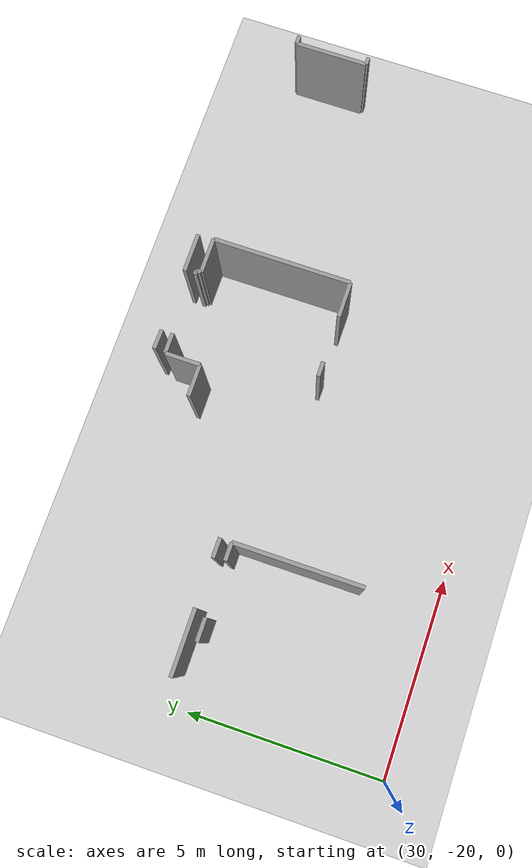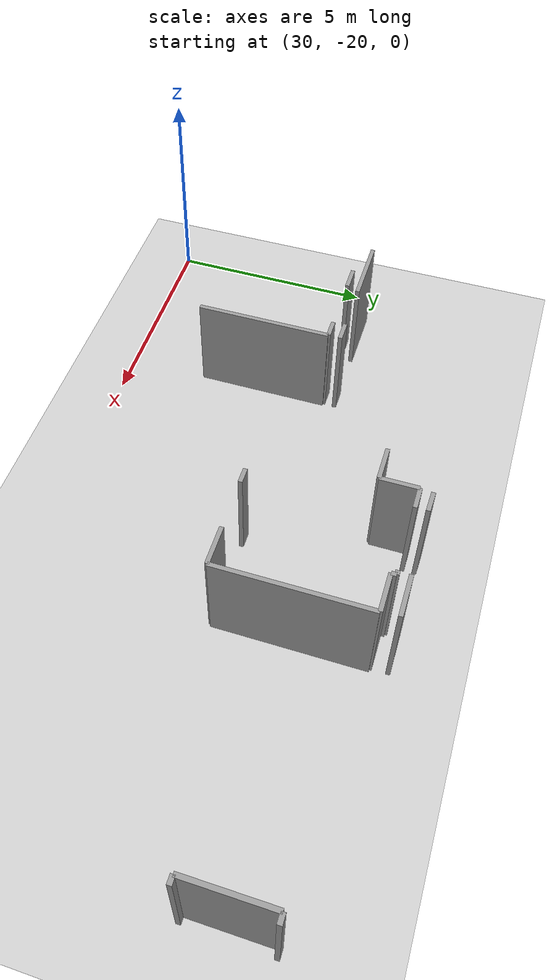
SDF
<sdf version="1.6">
 <world name="default">
  <model name="ground_plane">
   <static>1</static>
   <link name="link">
    <collision name="collision">
     <geometry><plane><normal>0 0 1</normal><size>100 100</size></plane></geometry>
     <surface><friction><ode><mu>100</mu><mu2>50</mu2></ode></friction></surface>
    </collision>
    <visual name="visual">
     <cast_shadows>0</cast_shadows>
     <geometry><plane><normal>0 0 1</normal><size>100 100</size></plane></geometry>
     <material>
      <script><uri>file://media/materials/scripts/gazebo.material</uri><name>Gazebo/Grey</name></script>
     </material>
    </visual>
   </link>
  </model>
  <model name="50045228">
   <static>1</static>
   <link name="Wall_214">
    <collision name="Wall_214_Collision">
     <geometry><box><size>0.978719355555 0.1 2.5</size></box></geometry>
     <pose>0.489359677777 0 1.25 0 0 0</pose>
    </collision>
    <visual name="Wall_214_Visual">
     <pose>0.489359677777 0 1.25 0 0 0</pose>
     <geometry><box><size>0.978719355555 0.1 2.5</size></box></geometry>
     <material>
      <script><uri>file://media/materials/scripts/gazebo.material</uri><name>Gazebo/Grey</name></script>
      <ambient>1 1 1 1</ambient>
     </material>
    </visual>
    <pose>87.7485649044 -40.1878785957 0 0 0 3.14159265359</pose>
   </link>
   <link name="Wall_215">
    <collision name="Wall_215_Collision">
     <geometry><box><size>0.491246084842 0.1 2.5</size></box></geometry>
     <pose>0.245623042421 0 1.25 0 0 0</pose>
    </collision>
    <visual name="Wall_215_Visual">
     <pose>0.245623042421 0 1.25 0 0 0</pose>
     <geometry><box><size>0.491246084842 0.1 2.5</size></box></geometry>
     <material>
      <script><uri>file://media/materials/scripts/gazebo.material</uri><name>Gazebo/Grey</name></script>
      <ambient>1 1 1 1</ambient>
     </material>
    </visual>
    <pose>85.1851194063 -40.1878785957 0 0 0 3.11499081876</pose>
   </link>
   <link name="Wall_226">
    <collision name="Wall_226_Collision">
     <geometry><box><size>0.216802511814 0.1 2.5</size></box></geometry>
     <pose>0.108401255907 0 1.25 0 0 0</pose>
    </collision>
    <visual name="Wall_226_Visual">
     <pose>0.108401255907 0 1.25 0 0 0</pose>
     <geometry><box><size>0.216802511814 0.1 2.5</size></box></geometry>
     <material>
      <script><uri>file://media/materials/scripts/gazebo.material</uri><name>Gazebo/Grey</name></script>
      <ambient>1 1 1 1</ambient>
     </material>
    </visual>
    <pose>93.6734007802 -40.7979448796 0 0 0 3.14159265359</pose>
   </link>
   <link name="Wall_227">
    <collision name="Wall_227_Collision">
     <geometry><box><size>1.86736862136 0.1 2.5</size></box></geometry>
     <pose>0.933684310678 0 1.25 0 0 0</pose>
    </collision>
    <visual name="Wall_227_Visual">
     <pose>0.933684310678 0 1.25 0 0 0</pose>
     <geometry><box><size>1.86736862136 0.1 2.5</size></box></geometry>
     <material>
      <script><uri>file://media/materials/scripts/gazebo.material</uri><name>Gazebo/Grey</name></script>
      <ambient>1 1 1 1</ambient>
     </material>
    </visual>
    <pose>93.4565982684 -40.7979448796 0 0 0 -1.57079632679</pose>
   </link>
   <link name="Wall_228">
    <collision name="Wall_228_Collision">
     <geometry><box><size>0.189654625607 0.1 2.5</size></box></geometry>
     <pose>0.0948273128033 0 1.25 0 0 0</pose>
    </collision>
    <visual name="Wall_228_Visual">
     <pose>0.0948273128033 0 1.25 0 0 0</pose>
     <geometry><box><size>0.189654625607 0.1 2.5</size></box></geometry>
     <material>
      <script><uri>file://media/materials/scripts/gazebo.material</uri><name>Gazebo/Grey</name></script>
      <ambient>1 1 1 1</ambient>
     </material>
    </visual>
    <pose>93.4565982684 -42.665313501 0 0 0 0.0</pose>
   </link>
   <link name="Wall_233">
    <collision name="Wall_233_Collision">
     <geometry><box><size>0.810757667058 0.1 2.5</size></box></geometry>
     <pose>0.405378833529 0 1.25 0 0 0</pose>
    </collision>
    <visual name="Wall_233_Visual">
     <pose>0.405378833529 0 1.25 0 0 0</pose>
     <geometry><box><size>0.810757667058 0.1 2.5</size></box></geometry>
     <material>
      <script><uri>file://media/materials/scripts/gazebo.material</uri><name>Gazebo/Grey</name></script>
      <ambient>1 1 1 1</ambient>
     </material>
    </visual>
    <pose>83.8571564492 -41.3472455679 0 0 0 0.0</pose>
   </link>
   <link name="Wall_234">
    <collision name="Wall_234_Collision">
     <geometry><box><size>0.884082331674 0.1 2.5</size></box></geometry>
     <pose>0.442041165837 0 1.25 0 0 0</pose>
    </collision>
    <visual name="Wall_234_Visual">
     <pose>0.442041165837 0 1.25 0 0 0</pose>
     <geometry><box><size>0.884082331674 0.1 2.5</size></box></geometry>
     <material>
      <script><uri>file://media/materials/scripts/gazebo.material</uri><name>Gazebo/Grey</name></script>
      <ambient>1 1 1 1</ambient>
     </material>
    </visual>
    <pose>84.6679141163 -41.3472455679 0 0 0 1.57079632679</pose>
   </link>
   <link name="Wall_235">
    <collision name="Wall_235_Collision">
     <geometry><box><size>0.517205290032 0.1 2.5</size></box></geometry>
     <pose>0.258602645016 0 1.25 0 0 0</pose>
    </collision>
    <visual name="Wall_235_Visual">
     <pose>0.258602645016 0 1.25 0 0 0</pose>
     <geometry><box><size>0.517205290032 0.1 2.5</size></box></geometry>
     <material>
      <script><uri>file://media/materials/scripts/gazebo.material</uri><name>Gazebo/Grey</name></script>
      <ambient>1 1 1 1</ambient>
     </material>
    </visual>
    <pose>84.6679141163 -40.4631632362 0 0 0 0.0</pose>
   </link>
   <link name="Wall_236">
    <collision name="Wall_236_Collision">
     <geometry><box><size>0.101487425074 0.1 2.5</size></box></geometry>
     <pose>0.0507437125369 0 1.25 0 0 0</pose>
    </collision>
    <visual name="Wall_236_Visual">
     <pose>0.0507437125369 0 1.25 0 0 0</pose>
     <geometry><box><size>0.101487425074 0.1 2.5</size></box></geometry>
     <material>
      <script><uri>file://media/materials/scripts/gazebo.material</uri><name>Gazebo/Grey</name></script>
      <ambient>1 1 1 1</ambient>
     </material>
    </visual>
    <pose>86.7590625099 -40.4631632362 0 0 0 0.0</pose>
   </link>
   <link name="Wall_237">
    <collision name="Wall_237_Collision">
     <geometry><box><size>0.119882020868 0.1 2.5</size></box></geometry>
     <pose>0.0599410104342 0 1.25 0 0 0</pose>
    </collision>
    <visual name="Wall_237_Visual">
     <pose>0.0599410104342 0 1.25 0 0 0</pose>
     <geometry><box><size>0.119882020868 0.1 2.5</size></box></geometry>
     <material>
      <script><uri>file://media/materials/scripts/gazebo.material</uri><name>Gazebo/Grey</name></script>
      <ambient>1 1 1 1</ambient>
     </material>
    </visual>
    <pose>86.860549935 -40.4631632362 0 0 0 -1.57079632679</pose>
   </link>
   <link name="Wall_238">
    <collision name="Wall_238_Collision">
     <geometry><box><size>0.900193460404 0.1 2.5</size></box></geometry>
     <pose>0.450096730202 0 1.25 0 0 0</pose>
    </collision>
    <visual name="Wall_238_Visual">
     <pose>0.450096730202 0 1.25 0 0 0</pose>
     <geometry><box><size>0.900193460404 0.1 2.5</size></box></geometry>
     <material>
      <script><uri>file://media/materials/scripts/gazebo.material</uri><name>Gazebo/Grey</name></script>
      <ambient>1 1 1 1</ambient>
     </material>
    </visual>
    <pose>86.860549935 -40.583045257 0 0 0 0.0</pose>
   </link>
   <link name="Wall_239">
    <collision name="Wall_239_Collision">
     <geometry><box><size>3.51679299737 0.1 2.5</size></box></geometry>
     <pose>1.75839649868 0 1.25 0 0 0</pose>
    </collision>
    <visual name="Wall_239_Visual">
     <pose>1.75839649868 0 1.25 0 0 0</pose>
     <geometry><box><size>3.51679299737 0.1 2.5</size></box></geometry>
     <material>
      <script><uri>file://media/materials/scripts/gazebo.material</uri><name>Gazebo/Grey</name></script>
      <ambient>1 1 1 1</ambient>
     </material>
    </visual>
    <pose>87.7607433954 -40.583045257 0 0 0 -1.57079632679</pose>
   </link>
   <link name="Wall_240">
    <collision name="Wall_240_Collision">
     <geometry><box><size>0.915797152009 0.1 2.5</size></box></geometry>
     <pose>0.457898576005 0 1.25 0 0 0</pose>
    </collision>
    <visual name="Wall_240_Visual">
     <pose>0.457898576005 0 1.25 0 0 0</pose>
     <geometry><box><size>0.915797152009 0.1 2.5</size></box></geometry>
     <material>
      <script><uri>file://media/materials/scripts/gazebo.material</uri><name>Gazebo/Grey</name></script>
      <ambient>1 1 1 1</ambient>
     </material>
    </visual>
    <pose>87.7607433954 -44.0998382544 0 0 0 3.14159265359</pose>
   </link>
   <link name="Wall_241">
    <collision name="Wall_241_Collision">
     <geometry><box><size>0.364593574577 0.1 2.5</size></box></geometry>
     <pose>0.182296787289 0 1.25 0 0 0</pose>
    </collision>
    <visual name="Wall_241_Visual">
     <pose>0.182296787289 0 1.25 0 0 0</pose>
     <geometry><box><size>0.364593574577 0.1 2.5</size></box></geometry>
     <material>
      <script><uri>file://media/materials/scripts/gazebo.material</uri><name>Gazebo/Grey</name></script>
      <ambient>1 1 1 1</ambient>
     </material>
    </visual>
    <pose>85.6609685706 -44.0998382544 0 0 0 3.14159265359</pose>
   </link>
   <link name="Wall_255">
    <collision name="Wall_255_Collision">
     <geometry><box><size>0.483714439758 0.1 2.5</size></box></geometry>
     <pose>0.241857219879 0 1.25 0 0 0</pose>
    </collision>
    <visual name="Wall_255_Visual">
     <pose>0.241857219879 0 1.25 0 0 0</pose>
     <geometry><box><size>0.483714439758 0.1 2.5</size></box></geometry>
     <material>
      <script><uri>file://media/materials/scripts/gazebo.material</uri><name>Gazebo/Grey</name></script>
      <ambient>1 1 1 1</ambient>
     </material>
    </visual>
    <pose>80.9643842568 -43.1740192192 0 0 0 3.14159265359</pose>
   </link>
   <link name="Wall_256">
    <collision name="Wall_256_Collision">
     <geometry><box><size>1.60299387904 0.1 2.5</size></box></geometry>
     <pose>0.80149693952 0 1.25 0 0 0</pose>
    </collision>
    <visual name="Wall_256_Visual">
     <pose>0.80149693952 0 1.25 0 0 0</pose>
     <geometry><box><size>1.60299387904 0.1 2.5</size></box></geometry>
     <material>
      <script><uri>file://media/materials/scripts/gazebo.material</uri><name>Gazebo/Grey</name></script>
      <ambient>1 1 1 1</ambient>
     </material>
    </visual>
    <pose>79.3012590784 -43.1740192192 0 0 0 3.14159265359</pose>
   </link>
   <link name="Wall_264">
    <collision name="Wall_264_Collision">
     <geometry><box><size>0.573530810948 0.1 2.5</size></box></geometry>
     <pose>0.286765405474 0 1.25 0 0 0</pose>
    </collision>
    <visual name="Wall_264_Visual">
     <pose>0.286765405474 0 1.25 0 0 0</pose>
     <geometry><box><size>0.573530810948 0.1 2.5</size></box></geometry>
     <material>
      <script><uri>file://media/materials/scripts/gazebo.material</uri><name>Gazebo/Grey</name></script>
      <ambient>1 1 1 1</ambient>
     </material>
    </visual>
    <pose>78.6048016238 -43.4621166471 0 0 0 0.0</pose>
   </link>
   <link name="Wall_265">
    <collision name="Wall_265_Collision">
     <geometry><box><size>0.444007484698 0.1 2.5</size></box></geometry>
     <pose>0.222003742349 0 1.25 0 0 0</pose>
    </collision>
    <visual name="Wall_265_Visual">
     <pose>0.222003742349 0 1.25 0 0 0</pose>
     <geometry><box><size>0.444007484698 0.1 2.5</size></box></geometry>
     <material>
      <script><uri>file://media/materials/scripts/gazebo.material</uri><name>Gazebo/Grey</name></script>
      <ambient>1 1 1 1</ambient>
     </material>
    </visual>
    <pose>80.5048999397 -43.4621166471 0 0 0 0.0</pose>
   </link>
   <link name="Wall_266">
    <collision name="Wall_266_Collision">
     <geometry><box><size>3.21068155149 0.1 2.5</size></box></geometry>
     <pose>1.60534077574 0 1.25 0 0 0</pose>
    </collision>
    <visual name="Wall_266_Visual">
     <pose>1.60534077574 0 1.25 0 0 0</pose>
     <geometry><box><size>3.21068155149 0.1 2.5</size></box></geometry>
     <material>
      <script><uri>file://media/materials/scripts/gazebo.material</uri><name>Gazebo/Grey</name></script>
      <ambient>1 1 1 1</ambient>
     </material>
    </visual>
    <pose>80.9489074244 -43.4621166471 0 0 0 -1.57079632679</pose>
   </link>
   <pose>-46.9 28.5754781009 0 0 0 0</pose>
  </model>
 </world>
</sdf>
